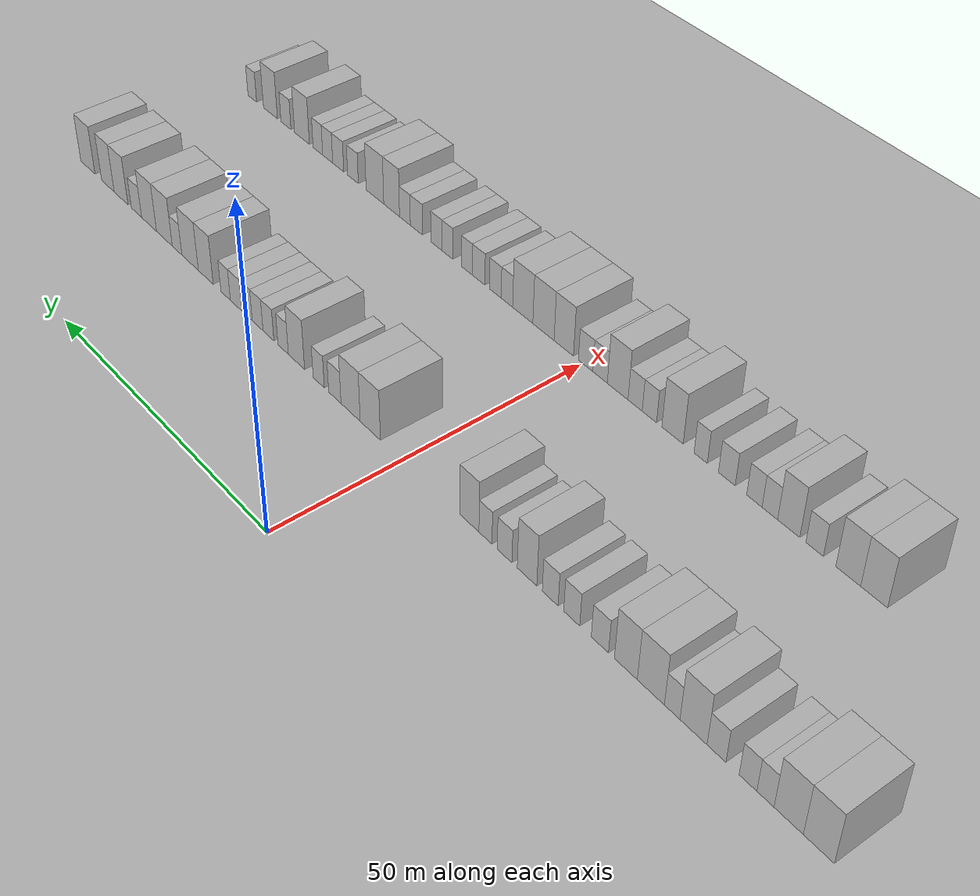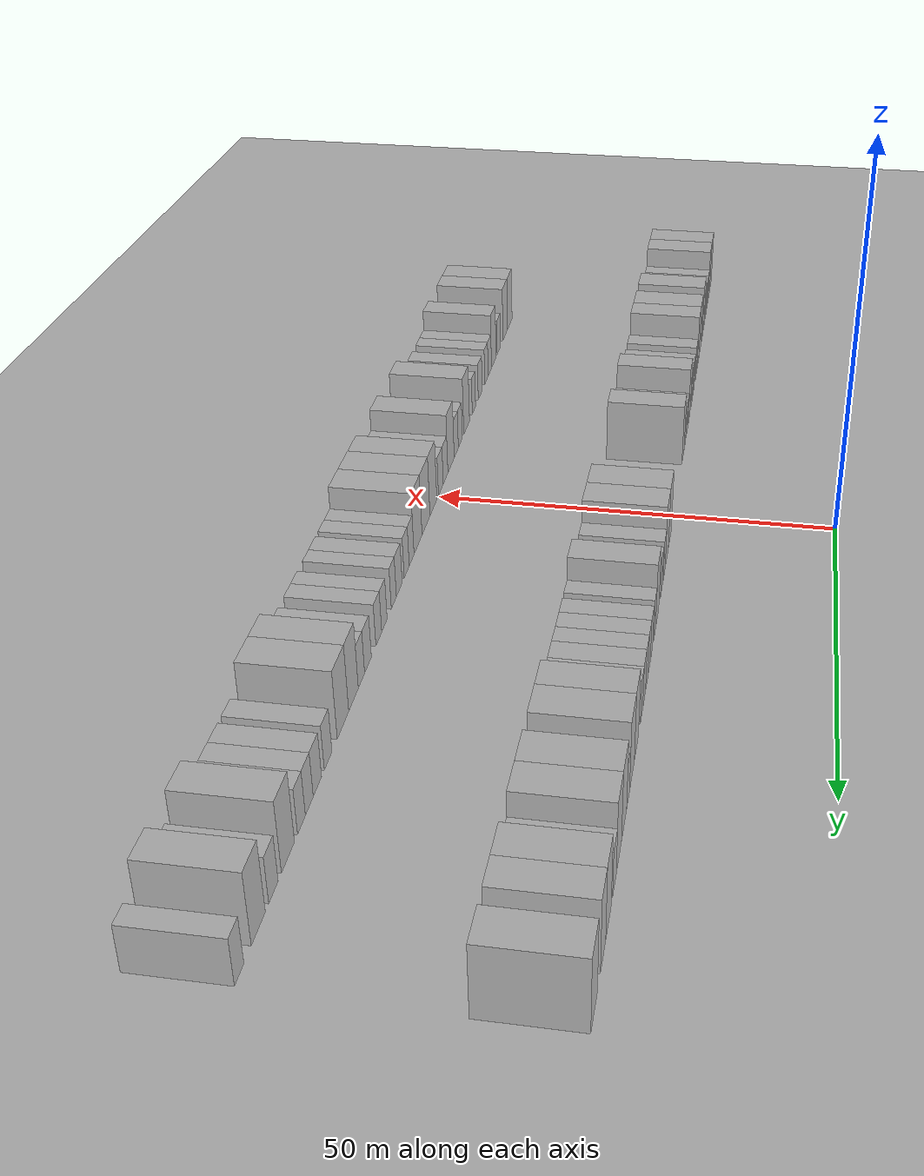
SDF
<sdf version="1.6">
 <world name="default">
  <include><name>ground_plane_1</name><uri>model://HANNAS_ground_plane</uri></include>
  <include>
   <name>ground_plane_2</name>
   <uri>model://HANNAS_ground_plane</uri>
   <pose>100 0 0  0 0 0</pose>
  </include>
  <model name="building_36">
   <static>1</static>
   <pose>25.0000 -72.1518 0 0.000000 0.000000 0.000000</pose>
   <link name="link">
    <pose>0 0 4.50 0 0 0</pose>
    <collision name="collision"><geometry><box><size>10.0000 4.3803 9.0000</size></box></geometry></collision>
    <visual name="visual">
     <cast_shadows>0</cast_shadows>
     <geometry><box><size>10.0000 4.3803 9.0000</size></box></geometry>
     <material>
      <script>
       <uri>model://HANNAS_wall/materials/scripts</uri>
       <uri>model://HANNAS_wall/materials/textures</uri>
       <name>vrc/HANNAS_wall</name>
      </script>
     </material>
    </visual>
   </link>
  </model>
  <model name="building_37">
   <static>1</static>
   <pose>25.0000 -67.8491 0 0.000000 0.000000 0.000000</pose>
   <link name="link">
    <pose>0 0 4.50 0 0 0</pose>
    <collision name="collision"><geometry><box><size>10.0000 4.2253 9.0000</size></box></geometry></collision>
    <visual name="visual">
     <cast_shadows>0</cast_shadows>
     <geometry><box><size>10.0000 4.2253 9.0000</size></box></geometry>
     <material>
      <script>
       <uri>model://HANNAS_wall/materials/scripts</uri>
       <uri>model://HANNAS_wall/materials/textures</uri>
       <name>vrc/HANNAS_wall</name>
      </script>
     </material>
    </visual>
   </link>
  </model>
  <model name="building_38">
   <static>1</static>
   <pose>25.0000 -64.4695 0 0.000000 0.000000 0.000000</pose>
   <link name="link">
    <pose>0 0 3.00 0 0 0</pose>
    <collision name="collision"><geometry><box><size>10.0000 2.5338 6.0000</size></box></geometry></collision>
    <visual name="visual">
     <cast_shadows>0</cast_shadows>
     <geometry><box><size>10.0000 2.5338 6.0000</size></box></geometry>
     <material>
      <script>
       <uri>model://HANNAS_wall/materials/scripts</uri>
       <uri>model://HANNAS_wall/materials/textures</uri>
       <name>vrc/HANNAS_wall</name>
      </script>
     </material>
    </visual>
   </link>
  </model>
  <model name="building_39">
   <static>1</static>
   <pose>25.0000 -61.8764 0 0.000000 0.000000 0.000000</pose>
   <link name="link">
    <pose>0 0 3.00 0 0 0</pose>
    <collision name="collision"><geometry><box><size>10.0000 2.6525 6.0000</size></box></geometry></collision>
    <visual name="visual">
     <cast_shadows>0</cast_shadows>
     <geometry><box><size>10.0000 2.6525 6.0000</size></box></geometry>
     <material>
      <script>
       <uri>model://HANNAS_wall/materials/scripts</uri>
       <uri>model://HANNAS_wall/materials/textures</uri>
       <name>vrc/HANNAS_wall</name>
      </script>
     </material>
    </visual>
   </link>
  </model>
  <model name="building_40">
   <static>1</static>
   <pose>25.0000 -57.0956 0 0.000000 0.000000 0.000000</pose>
   <link name="link">
    <pose>0 0 3.00 0 0 0</pose>
    <collision name="collision"><geometry><box><size>10.0000 2.9092 6.0000</size></box></geometry></collision>
    <visual name="visual">
     <cast_shadows>0</cast_shadows>
     <geometry><box><size>10.0000 2.9092 6.0000</size></box></geometry>
     <material>
      <script>
       <uri>model://HANNAS_wall/materials/scripts</uri>
       <uri>model://HANNAS_wall/materials/textures</uri>
       <name>vrc/HANNAS_wall</name>
      </script>
     </material>
    </visual>
   </link>
  </model>
  <model name="building_41">
   <static>1</static>
   <pose>25.0000 -53.5084 0 0.000000 0.000000 0.000000</pose>
   <link name="link">
    <pose>0 0 4.50 0 0 0</pose>
    <collision name="collision"><geometry><box><size>10.0000 4.2651 9.0000</size></box></geometry></collision>
    <visual name="visual">
     <cast_shadows>0</cast_shadows>
     <geometry><box><size>10.0000 4.2651 9.0000</size></box></geometry>
     <material>
      <script>
       <uri>model://HANNAS_wall/materials/scripts</uri>
       <uri>model://HANNAS_wall/materials/textures</uri>
       <name>vrc/HANNAS_wall</name>
      </script>
     </material>
    </visual>
   </link>
  </model>
  <model name="building_42">
   <static>1</static>
   <pose>25.0000 -50.1264 0 0.000000 0.000000 0.000000</pose>
   <link name="link">
    <pose>0 0 3.00 0 0 0</pose>
    <collision name="collision"><geometry><box><size>10.0000 2.4989 6.0000</size></box></geometry></collision>
    <visual name="visual">
     <cast_shadows>0</cast_shadows>
     <geometry><box><size>10.0000 2.4989 6.0000</size></box></geometry>
     <material>
      <script>
       <uri>model://HANNAS_wall/materials/scripts</uri>
       <uri>model://HANNAS_wall/materials/textures</uri>
       <name>vrc/HANNAS_wall</name>
      </script>
     </material>
    </visual>
   </link>
  </model>
  <model name="building_43">
   <static>1</static>
   <pose>25.0000 -46.6561 0 0.000000 0.000000 0.000000</pose>
   <link name="link">
    <pose>0 0 4.50 0 0 0</pose>
    <collision name="collision"><geometry><box><size>10.0000 4.4417 9.0000</size></box></geometry></collision>
    <visual name="visual">
     <cast_shadows>0</cast_shadows>
     <geometry><box><size>10.0000 4.4417 9.0000</size></box></geometry>
     <material>
      <script>
       <uri>model://HANNAS_wall/materials/scripts</uri>
       <uri>model://HANNAS_wall/materials/textures</uri>
       <name>vrc/HANNAS_wall</name>
      </script>
     </material>
    </visual>
   </link>
  </model>
  <model name="building_44">
   <static>1</static>
   <pose>25.0000 -42.5139 0 0.000000 0.000000 0.000000</pose>
   <link name="link">
    <pose>0 0 4.50 0 0 0</pose>
    <collision name="collision"><geometry><box><size>10.0000 3.8426 9.0000</size></box></geometry></collision>
    <visual name="visual">
     <cast_shadows>0</cast_shadows>
     <geometry><box><size>10.0000 3.8426 9.0000</size></box></geometry>
     <material>
      <script>
       <uri>model://HANNAS_wall/materials/scripts</uri>
       <uri>model://HANNAS_wall/materials/textures</uri>
       <name>vrc/HANNAS_wall</name>
      </script>
     </material>
    </visual>
   </link>
  </model>
  <model name="building_45">
   <static>1</static>
   <pose>25.0000 -38.1033 0 0.000000 0.000000 0.000000</pose>
   <link name="link">
    <pose>0 0 3.00 0 0 0</pose>
    <collision name="collision"><geometry><box><size>10.0000 2.9786 6.0000</size></box></geometry></collision>
    <visual name="visual">
     <cast_shadows>0</cast_shadows>
     <geometry><box><size>10.0000 2.9786 6.0000</size></box></geometry>
     <material>
      <script>
       <uri>model://HANNAS_wall/materials/scripts</uri>
       <uri>model://HANNAS_wall/materials/textures</uri>
       <name>vrc/HANNAS_wall</name>
      </script>
     </material>
    </visual>
   </link>
  </model>
  <model name="building_46">
   <static>1</static>
   <pose>25.0000 -33.1931 0 0.000000 0.000000 0.000000</pose>
   <link name="link">
    <pose>0 0 3.00 0 0 0</pose>
    <collision name="collision"><geometry><box><size>10.0000 2.8418 6.0000</size></box></geometry></collision>
    <visual name="visual">
     <cast_shadows>0</cast_shadows>
     <geometry><box><size>10.0000 2.8418 6.0000</size></box></geometry>
     <material>
      <script>
       <uri>model://HANNAS_wall/materials/scripts</uri>
       <uri>model://HANNAS_wall/materials/textures</uri>
       <name>vrc/HANNAS_wall</name>
      </script>
     </material>
    </visual>
   </link>
  </model>
  <model name="building_47">
   <static>1</static>
   <pose>25.0000 -29.3396 0 0.000000 0.000000 0.000000</pose>
   <link name="link">
    <pose>0 0 3.00 0 0 0</pose>
    <collision name="collision"><geometry><box><size>10.0000 2.8653 6.0000</size></box></geometry></collision>
    <visual name="visual">
     <cast_shadows>0</cast_shadows>
     <geometry><box><size>10.0000 2.8653 6.0000</size></box></geometry>
     <material>
      <script>
       <uri>model://HANNAS_wall/materials/scripts</uri>
       <uri>model://HANNAS_wall/materials/textures</uri>
       <name>vrc/HANNAS_wall</name>
      </script>
     </material>
    </visual>
   </link>
  </model>
  <model name="building_48">
   <static>1</static>
   <pose>25.0000 -25.0967 0 0.000000 0.000000 0.000000</pose>
   <link name="link">
    <pose>0 0 4.50 0 0 0</pose>
    <collision name="collision"><geometry><box><size>10.0000 3.6206 9.0000</size></box></geometry></collision>
    <visual name="visual">
     <cast_shadows>0</cast_shadows>
     <geometry><box><size>10.0000 3.6206 9.0000</size></box></geometry>
     <material>
      <script>
       <uri>model://HANNAS_wall/materials/scripts</uri>
       <uri>model://HANNAS_wall/materials/textures</uri>
       <name>vrc/HANNAS_wall</name>
      </script>
     </material>
    </visual>
   </link>
  </model>
  <model name="building_49">
   <static>1</static>
   <pose>25.0000 -20.8921 0 0.000000 0.000000 0.000000</pose>
   <link name="link">
    <pose>0 0 3.00 0 0 0</pose>
    <collision name="collision"><geometry><box><size>10.0000 2.7886 6.0000</size></box></geometry></collision>
    <visual name="visual">
     <cast_shadows>0</cast_shadows>
     <geometry><box><size>10.0000 2.7886 6.0000</size></box></geometry>
     <material>
      <script>
       <uri>model://HANNAS_wall/materials/scripts</uri>
       <uri>model://HANNAS_wall/materials/textures</uri>
       <name>vrc/HANNAS_wall</name>
      </script>
     </material>
    </visual>
   </link>
  </model>
  <model name="building_50">
   <static>1</static>
   <pose>25.0000 -17.2437 0 0.000000 0.000000 0.000000</pose>
   <link name="link">
    <pose>0 0 3.00 0 0 0</pose>
    <collision name="collision"><geometry><box><size>10.0000 2.5082 6.0000</size></box></geometry></collision>
    <visual name="visual">
     <cast_shadows>0</cast_shadows>
     <geometry><box><size>10.0000 2.5082 6.0000</size></box></geometry>
     <material>
      <script>
       <uri>model://HANNAS_wall/materials/scripts</uri>
       <uri>model://HANNAS_wall/materials/textures</uri>
       <name>vrc/HANNAS_wall</name>
      </script>
     </material>
    </visual>
   </link>
  </model>
  <model name="building_51">
   <static>1</static>
   <pose>25.0000 -14.1035 0 0.000000 0.000000 0.000000</pose>
   <link name="link">
    <pose>0 0 4.50 0 0 0</pose>
    <collision name="collision"><geometry><box><size>10.0000 3.7724 9.0000</size></box></geometry></collision>
    <visual name="visual">
     <cast_shadows>0</cast_shadows>
     <geometry><box><size>10.0000 3.7724 9.0000</size></box></geometry>
     <material>
      <script>
       <uri>model://HANNAS_wall/materials/scripts</uri>
       <uri>model://HANNAS_wall/materials/textures</uri>
       <name>vrc/HANNAS_wall</name>
      </script>
     </material>
    </visual>
   </link>
  </model>
  <model name="building_52">
   <static>1</static>
   <pose>25.0000 6.3976 0 0.000000 0.000000 0.000000</pose>
   <link name="link">
    <pose>0 0 4.50 0 0 0</pose>
    <collision name="collision"><geometry><box><size>10.0000 4.4099 9.0000</size></box></geometry></collision>
    <visual name="visual">
     <cast_shadows>0</cast_shadows>
     <geometry><box><size>10.0000 4.4099 9.0000</size></box></geometry>
     <material>
      <script>
       <uri>model://HANNAS_wall/materials/scripts</uri>
       <uri>model://HANNAS_wall/materials/textures</uri>
       <name>vrc/HANNAS_wall</name>
      </script>
     </material>
    </visual>
   </link>
  </model>
  <model name="building_53">
   <static>1</static>
   <pose>25.0000 10.7470 0 0.000000 0.000000 0.000000</pose>
   <link name="link">
    <pose>0 0 4.50 0 0 0</pose>
    <collision name="collision"><geometry><box><size>10.0000 4.2888 9.0000</size></box></geometry></collision>
    <visual name="visual">
     <cast_shadows>0</cast_shadows>
     <geometry><box><size>10.0000 4.2888 9.0000</size></box></geometry>
     <material>
      <script>
       <uri>model://HANNAS_wall/materials/scripts</uri>
       <uri>model://HANNAS_wall/materials/textures</uri>
       <name>vrc/HANNAS_wall</name>
      </script>
     </material>
    </visual>
   </link>
  </model>
  <model name="building_54">
   <static>1</static>
   <pose>25.0000 14.2890 0 0.000000 0.000000 0.000000</pose>
   <link name="link">
    <pose>0 0 3.00 0 0 0</pose>
    <collision name="collision"><geometry><box><size>10.0000 2.7950 6.0000</size></box></geometry></collision>
    <visual name="visual">
     <cast_shadows>0</cast_shadows>
     <geometry><box><size>10.0000 2.7950 6.0000</size></box></geometry>
     <material>
      <script>
       <uri>model://HANNAS_wall/materials/scripts</uri>
       <uri>model://HANNAS_wall/materials/textures</uri>
       <name>vrc/HANNAS_wall</name>
      </script>
     </material>
    </visual>
   </link>
  </model>
  <model name="building_55">
   <static>1</static>
   <pose>25.0000 17.9822 0 0.000000 0.000000 0.000000</pose>
   <link name="link">
    <pose>0 0 3.00 0 0 0</pose>
    <collision name="collision"><geometry><box><size>10.0000 2.5914 6.0000</size></box></geometry></collision>
    <visual name="visual">
     <cast_shadows>0</cast_shadows>
     <geometry><box><size>10.0000 2.5914 6.0000</size></box></geometry>
     <material>
      <script>
       <uri>model://HANNAS_wall/materials/scripts</uri>
       <uri>model://HANNAS_wall/materials/textures</uri>
       <name>vrc/HANNAS_wall</name>
      </script>
     </material>
    </visual>
   </link>
  </model>
  <model name="building_56">
   <static>1</static>
   <pose>25.0000 23.2007 0 0.000000 0.000000 0.000000</pose>
   <link name="link">
    <pose>0 0 4.50 0 0 0</pose>
    <collision name="collision"><geometry><box><size>10.0000 3.8457 9.0000</size></box></geometry></collision>
    <visual name="visual">
     <cast_shadows>0</cast_shadows>
     <geometry><box><size>10.0000 3.8457 9.0000</size></box></geometry>
     <material>
      <script>
       <uri>model://HANNAS_wall/materials/scripts</uri>
       <uri>model://HANNAS_wall/materials/textures</uri>
       <name>vrc/HANNAS_wall</name>
      </script>
     </material>
    </visual>
   </link>
  </model>
  <model name="building_57">
   <static>1</static>
   <pose>25.0000 26.3713 0 0.000000 0.000000 0.000000</pose>
   <link name="link">
    <pose>0 0 3.00 0 0 0</pose>
    <collision name="collision"><geometry><box><size>10.0000 2.4954 6.0000</size></box></geometry></collision>
    <visual name="visual">
     <cast_shadows>0</cast_shadows>
     <geometry><box><size>10.0000 2.4954 6.0000</size></box></geometry>
     <material>
      <script>
       <uri>model://HANNAS_wall/materials/scripts</uri>
       <uri>model://HANNAS_wall/materials/textures</uri>
       <name>vrc/HANNAS_wall</name>
      </script>
     </material>
    </visual>
   </link>
  </model>
  <model name="building_58">
   <static>1</static>
   <pose>25.0000 29.9428 0 0.000000 0.000000 0.000000</pose>
   <link name="link">
    <pose>0 0 3.00 0 0 0</pose>
    <collision name="collision"><geometry><box><size>10.0000 2.6477 6.0000</size></box></geometry></collision>
    <visual name="visual">
     <cast_shadows>0</cast_shadows>
     <geometry><box><size>10.0000 2.6477 6.0000</size></box></geometry>
     <material>
      <script>
       <uri>model://HANNAS_wall/materials/scripts</uri>
       <uri>model://HANNAS_wall/materials/textures</uri>
       <name>vrc/HANNAS_wall</name>
      </script>
     </material>
    </visual>
   </link>
  </model>
  <model name="building_59">
   <static>1</static>
   <pose>25.0000 32.6140 0 0.000000 0.000000 0.000000</pose>
   <link name="link">
    <pose>0 0 3.00 0 0 0</pose>
    <collision name="collision"><geometry><box><size>10.0000 2.6945 6.0000</size></box></geometry></collision>
    <visual name="visual">
     <cast_shadows>0</cast_shadows>
     <geometry><box><size>10.0000 2.6945 6.0000</size></box></geometry>
     <material>
      <script>
       <uri>model://HANNAS_wall/materials/scripts</uri>
       <uri>model://HANNAS_wall/materials/textures</uri>
       <name>vrc/HANNAS_wall</name>
      </script>
     </material>
    </visual>
   </link>
  </model>
  <model name="building_60">
   <static>1</static>
   <pose>25.0000 35.2494 0 0.000000 0.000000 0.000000</pose>
   <link name="link">
    <pose>0 0 3.00 0 0 0</pose>
    <collision name="collision"><geometry><box><size>10.0000 2.5763 6.0000</size></box></geometry></collision>
    <visual name="visual">
     <cast_shadows>0</cast_shadows>
     <geometry><box><size>10.0000 2.5763 6.0000</size></box></geometry>
     <material>
      <script>
       <uri>model://HANNAS_wall/materials/scripts</uri>
       <uri>model://HANNAS_wall/materials/textures</uri>
       <name>vrc/HANNAS_wall</name>
      </script>
     </material>
    </visual>
   </link>
  </model>
  <model name="building_61">
   <static>1</static>
   <pose>25.0000 38.0067 0 0.000000 0.000000 0.000000</pose>
   <link name="link">
    <pose>0 0 3.00 0 0 0</pose>
    <collision name="collision"><geometry><box><size>10.0000 2.9383 6.0000</size></box></geometry></collision>
    <visual name="visual">
     <cast_shadows>0</cast_shadows>
     <geometry><box><size>10.0000 2.9383 6.0000</size></box></geometry>
     <material>
      <script>
       <uri>model://HANNAS_wall/materials/scripts</uri>
       <uri>model://HANNAS_wall/materials/textures</uri>
       <name>vrc/HANNAS_wall</name>
      </script>
     </material>
    </visual>
   </link>
  </model>
  <model name="building_62">
   <static>1</static>
   <pose>25.0000 40.7028 0 0.000000 0.000000 0.000000</pose>
   <link name="link">
    <pose>0 0 3.00 0 0 0</pose>
    <collision name="collision"><geometry><box><size>10.0000 2.4539 6.0000</size></box></geometry></collision>
    <visual name="visual">
     <cast_shadows>0</cast_shadows>
     <geometry><box><size>10.0000 2.4539 6.0000</size></box></geometry>
     <material>
      <script>
       <uri>model://HANNAS_wall/materials/scripts</uri>
       <uri>model://HANNAS_wall/materials/textures</uri>
       <name>vrc/HANNAS_wall</name>
      </script>
     </material>
    </visual>
   </link>
  </model>
  <model name="building_63">
   <static>1</static>
   <pose>25.0000 45.8906 0 0.000000 0.000000 0.000000</pose>
   <link name="link">
    <pose>0 0 4.50 0 0 0</pose>
    <collision name="collision"><geometry><box><size>10.0000 3.9216 9.0000</size></box></geometry></collision>
    <visual name="visual">
     <cast_shadows>0</cast_shadows>
     <geometry><box><size>10.0000 3.9216 9.0000</size></box></geometry>
     <material>
      <script>
       <uri>model://HANNAS_wall/materials/scripts</uri>
       <uri>model://HANNAS_wall/materials/textures</uri>
       <name>vrc/HANNAS_wall</name>
      </script>
     </material>
    </visual>
   </link>
  </model>
  <model name="building_64">
   <static>1</static>
   <pose>25.0000 50.0739 0 0.000000 0.000000 0.000000</pose>
   <link name="link">
    <pose>0 0 4.50 0 0 0</pose>
    <collision name="collision"><geometry><box><size>10.0000 4.4449 9.0000</size></box></geometry></collision>
    <visual name="visual">
     <cast_shadows>0</cast_shadows>
     <geometry><box><size>10.0000 4.4449 9.0000</size></box></geometry>
     <material>
      <script>
       <uri>model://HANNAS_wall/materials/scripts</uri>
       <uri>model://HANNAS_wall/materials/textures</uri>
       <name>vrc/HANNAS_wall</name>
      </script>
     </material>
    </visual>
   </link>
  </model>
  <model name="building_65">
   <static>1</static>
   <pose>25.0000 53.5975 0 0.000000 0.000000 0.000000</pose>
   <link name="link">
    <pose>0 0 3.00 0 0 0</pose>
    <collision name="collision"><geometry><box><size>10.0000 2.6024 6.0000</size></box></geometry></collision>
    <visual name="visual">
     <cast_shadows>0</cast_shadows>
     <geometry><box><size>10.0000 2.6024 6.0000</size></box></geometry>
     <material>
      <script>
       <uri>model://HANNAS_wall/materials/scripts</uri>
       <uri>model://HANNAS_wall/materials/textures</uri>
       <name>vrc/HANNAS_wall</name>
      </script>
     </material>
    </visual>
   </link>
  </model>
  <model name="building_66">
   <static>1</static>
   <pose>25.0000 57.0975 0 0.000000 0.000000 0.000000</pose>
   <link name="link">
    <pose>0 0 4.50 0 0 0</pose>
    <collision name="collision"><geometry><box><size>10.0000 4.3976 9.0000</size></box></geometry></collision>
    <visual name="visual">
     <cast_shadows>0</cast_shadows>
     <geometry><box><size>10.0000 4.3976 9.0000</size></box></geometry>
     <material>
      <script>
       <uri>model://HANNAS_wall/materials/scripts</uri>
       <uri>model://HANNAS_wall/materials/textures</uri>
       <name>vrc/HANNAS_wall</name>
      </script>
     </material>
    </visual>
   </link>
  </model>
  <model name="building_67">
   <static>1</static>
   <pose>25.0000 61.4059 0 0.000000 0.000000 0.000000</pose>
   <link name="link">
    <pose>0 0 4.50 0 0 0</pose>
    <collision name="collision"><geometry><box><size>10.0000 4.2192 9.0000</size></box></geometry></collision>
    <visual name="visual">
     <cast_shadows>0</cast_shadows>
     <geometry><box><size>10.0000 4.2192 9.0000</size></box></geometry>
     <material>
      <script>
       <uri>model://HANNAS_wall/materials/scripts</uri>
       <uri>model://HANNAS_wall/materials/textures</uri>
       <name>vrc/HANNAS_wall</name>
      </script>
     </material>
    </visual>
   </link>
  </model>
  <model name="building_68">
   <static>1</static>
   <pose>25.0000 64.9801 0 0.000000 0.000000 0.000000</pose>
   <link name="link">
    <pose>0 0 3.00 0 0 0</pose>
    <collision name="collision"><geometry><box><size>10.0000 2.9291 6.0000</size></box></geometry></collision>
    <visual name="visual">
     <cast_shadows>0</cast_shadows>
     <geometry><box><size>10.0000 2.9291 6.0000</size></box></geometry>
     <material>
      <script>
       <uri>model://HANNAS_wall/materials/scripts</uri>
       <uri>model://HANNAS_wall/materials/textures</uri>
       <name>vrc/HANNAS_wall</name>
      </script>
     </material>
    </visual>
   </link>
  </model>
  <model name="building_69">
   <static>1</static>
   <pose>25.0000 69.4753 0 0.000000 0.000000 0.000000</pose>
   <link name="link">
    <pose>0 0 4.50 0 0 0</pose>
    <collision name="collision"><geometry><box><size>10.0000 4.0613 9.0000</size></box></geometry></collision>
    <visual name="visual">
     <cast_shadows>0</cast_shadows>
     <geometry><box><size>10.0000 4.0613 9.0000</size></box></geometry>
     <material>
      <script>
       <uri>model://HANNAS_wall/materials/scripts</uri>
       <uri>model://HANNAS_wall/materials/textures</uri>
       <name>vrc/HANNAS_wall</name>
      </script>
     </material>
    </visual>
   </link>
  </model>
  <model name="building_70">
   <static>1</static>
   <pose>25.0000 73.3760 0 0.000000 0.000000 0.000000</pose>
   <link name="link">
    <pose>0 0 4.50 0 0 0</pose>
    <collision name="collision"><geometry><box><size>10.0000 3.7401 9.0000</size></box></geometry></collision>
    <visual name="visual">
     <cast_shadows>0</cast_shadows>
     <geometry><box><size>10.0000 3.7401 9.0000</size></box></geometry>
     <material>
      <script>
       <uri>model://HANNAS_wall/materials/scripts</uri>
       <uri>model://HANNAS_wall/materials/textures</uri>
       <name>vrc/HANNAS_wall</name>
      </script>
     </material>
    </visual>
   </link>
  </model>
  <model name="building_71">
   <static>1</static>
   <pose>25.0000 79.4084 0 0.000000 0.000000 0.000000</pose>
   <link name="link">
    <pose>0 0 4.50 0 0 0</pose>
    <collision name="collision"><geometry><box><size>10.0000 4.3248 9.0000</size></box></geometry></collision>
    <visual name="visual">
     <cast_shadows>0</cast_shadows>
     <geometry><box><size>10.0000 4.3248 9.0000</size></box></geometry>
     <material>
      <script>
       <uri>model://HANNAS_wall/materials/scripts</uri>
       <uri>model://HANNAS_wall/materials/textures</uri>
       <name>vrc/HANNAS_wall</name>
      </script>
     </material>
    </visual>
   </link>
  </model>
  <model name="building_143">
   <static>1</static>
   <pose>55.0000 -52.2307 0 0.000000 0.000000 0.000000</pose>
   <link name="link">
    <pose>0 0 4.50 0 0 0</pose>
    <collision name="collision"><geometry><box><size>10.0000 4.1882 9.0000</size></box></geometry></collision>
    <visual name="visual">
     <cast_shadows>0</cast_shadows>
     <geometry><box><size>10.0000 4.1882 9.0000</size></box></geometry>
     <material>
      <script>
       <uri>model://HANNAS_wall/materials/scripts</uri>
       <uri>model://HANNAS_wall/materials/textures</uri>
       <name>vrc/HANNAS_wall</name>
      </script>
     </material>
    </visual>
   </link>
  </model>
  <model name="building_144">
   <static>1</static>
   <pose>55.0000 -48.1565 0 0.000000 0.000000 0.000000</pose>
   <link name="link">
    <pose>0 0 4.50 0 0 0</pose>
    <collision name="collision"><geometry><box><size>10.0000 3.9601 9.0000</size></box></geometry></collision>
    <visual name="visual">
     <cast_shadows>0</cast_shadows>
     <geometry><box><size>10.0000 3.9601 9.0000</size></box></geometry>
     <material>
      <script>
       <uri>model://HANNAS_wall/materials/scripts</uri>
       <uri>model://HANNAS_wall/materials/textures</uri>
       <name>vrc/HANNAS_wall</name>
      </script>
     </material>
    </visual>
   </link>
  </model>
  <model name="building_145">
   <static>1</static>
   <pose>55.0000 -42.7341 0 0.000000 0.000000 0.000000</pose>
   <link name="link">
    <pose>0 0 3.00 0 0 0</pose>
    <collision name="collision"><geometry><box><size>10.0000 2.8846 6.0000</size></box></geometry></collision>
    <visual name="visual">
     <cast_shadows>0</cast_shadows>
     <geometry><box><size>10.0000 2.8846 6.0000</size></box></geometry>
     <material>
      <script>
       <uri>model://HANNAS_wall/materials/scripts</uri>
       <uri>model://HANNAS_wall/materials/textures</uri>
       <name>vrc/HANNAS_wall</name>
      </script>
     </material>
    </visual>
   </link>
  </model>
  <model name="building_146">
   <static>1</static>
   <pose>55.0000 -38.4249 0 0.000000 0.000000 0.000000</pose>
   <link name="link">
    <pose>0 0 4.50 0 0 0</pose>
    <collision name="collision"><geometry><box><size>10.0000 3.7339 9.0000</size></box></geometry></collision>
    <visual name="visual">
     <cast_shadows>0</cast_shadows>
     <geometry><box><size>10.0000 3.7339 9.0000</size></box></geometry>
     <material>
      <script>
       <uri>model://HANNAS_wall/materials/scripts</uri>
       <uri>model://HANNAS_wall/materials/textures</uri>
       <name>vrc/HANNAS_wall</name>
      </script>
     </material>
    </visual>
   </link>
  </model>
  <model name="building_147">
   <static>1</static>
   <pose>55.0000 -35.2332 0 0.000000 0.000000 0.000000</pose>
   <link name="link">
    <pose>0 0 3.00 0 0 0</pose>
    <collision name="collision"><geometry><box><size>10.0000 2.6493 6.0000</size></box></geometry></collision>
    <visual name="visual">
     <cast_shadows>0</cast_shadows>
     <geometry><box><size>10.0000 2.6493 6.0000</size></box></geometry>
     <material>
      <script>
       <uri>model://HANNAS_wall/materials/scripts</uri>
       <uri>model://HANNAS_wall/materials/textures</uri>
       <name>vrc/HANNAS_wall</name>
      </script>
     </material>
    </visual>
   </link>
  </model>
  <model name="building_148">
   <static>1</static>
   <pose>55.0000 -32.5752 0 0.000000 0.000000 0.000000</pose>
   <link name="link">
    <pose>0 0 3.00 0 0 0</pose>
    <collision name="collision"><geometry><box><size>10.0000 2.6666 6.0000</size></box></geometry></collision>
    <visual name="visual">
     <cast_shadows>0</cast_shadows>
     <geometry><box><size>10.0000 2.6666 6.0000</size></box></geometry>
     <material>
      <script>
       <uri>model://HANNAS_wall/materials/scripts</uri>
       <uri>model://HANNAS_wall/materials/textures</uri>
       <name>vrc/HANNAS_wall</name>
      </script>
     </material>
    </visual>
   </link>
  </model>
  <model name="building_149">
   <static>1</static>
   <pose>55.0000 -27.7499 0 0.000000 0.000000 0.000000</pose>
   <link name="link">
    <pose>0 0 3.00 0 0 0</pose>
    <collision name="collision"><geometry><box><size>10.0000 2.9840 6.0000</size></box></geometry></collision>
    <visual name="visual">
     <cast_shadows>0</cast_shadows>
     <geometry><box><size>10.0000 2.9840 6.0000</size></box></geometry>
     <material>
      <script>
       <uri>model://HANNAS_wall/materials/scripts</uri>
       <uri>model://HANNAS_wall/materials/textures</uri>
       <name>vrc/HANNAS_wall</name>
      </script>
     </material>
    </visual>
   </link>
  </model>
  <model name="building_150">
   <static>1</static>
   <pose>55.0000 -23.0504 0 0.000000 0.000000 0.000000</pose>
   <link name="link">
    <pose>0 0 3.00 0 0 0</pose>
    <collision name="collision"><geometry><box><size>10.0000 2.4149 6.0000</size></box></geometry></collision>
    <visual name="visual">
     <cast_shadows>0</cast_shadows>
     <geometry><box><size>10.0000 2.4149 6.0000</size></box></geometry>
     <material>
      <script>
       <uri>model://HANNAS_wall/materials/scripts</uri>
       <uri>model://HANNAS_wall/materials/textures</uri>
       <name>vrc/HANNAS_wall</name>
      </script>
     </material>
    </visual>
   </link>
  </model>
  <model name="building_151">
   <static>1</static>
   <pose>55.0000 -17.8505 0 0.000000 0.000000 0.000000</pose>
   <link name="link">
    <pose>0 0 4.50 0 0 0</pose>
    <collision name="collision"><geometry><box><size>10.0000 3.9850 9.0000</size></box></geometry></collision>
    <visual name="visual">
     <cast_shadows>0</cast_shadows>
     <geometry><box><size>10.0000 3.9850 9.0000</size></box></geometry>
     <material>
      <script>
       <uri>model://HANNAS_wall/materials/scripts</uri>
       <uri>model://HANNAS_wall/materials/textures</uri>
       <name>vrc/HANNAS_wall</name>
      </script>
     </material>
    </visual>
   </link>
  </model>
  <model name="building_152">
   <static>1</static>
   <pose>55.0000 -13.4917 0 0.000000 0.000000 0.000000</pose>
   <link name="link">
    <pose>0 0 3.00 0 0 0</pose>
    <collision name="collision"><geometry><box><size>10.0000 2.7325 6.0000</size></box></geometry></collision>
    <visual name="visual">
     <cast_shadows>0</cast_shadows>
     <geometry><box><size>10.0000 2.7325 6.0000</size></box></geometry>
     <material>
      <script>
       <uri>model://HANNAS_wall/materials/scripts</uri>
       <uri>model://HANNAS_wall/materials/textures</uri>
       <name>vrc/HANNAS_wall</name>
      </script>
     </material>
    </visual>
   </link>
  </model>
  <model name="building_153">
   <static>1</static>
   <pose>55.0000 -10.7540 0 0.000000 0.000000 0.000000</pose>
   <link name="link">
    <pose>0 0 3.00 0 0 0</pose>
    <collision name="collision"><geometry><box><size>10.0000 2.7427 6.0000</size></box></geometry></collision>
    <visual name="visual">
     <cast_shadows>0</cast_shadows>
     <geometry><box><size>10.0000 2.7427 6.0000</size></box></geometry>
     <material>
      <script>
       <uri>model://HANNAS_wall/materials/scripts</uri>
       <uri>model://HANNAS_wall/materials/textures</uri>
       <name>vrc/HANNAS_wall</name>
      </script>
     </material>
    </visual>
   </link>
  </model>
  <model name="building_154">
   <static>1</static>
   <pose>55.0000 -7.3468 0 0.000000 0.000000 0.000000</pose>
   <link name="link">
    <pose>0 0 4.50 0 0 0</pose>
    <collision name="collision"><geometry><box><size>10.0000 4.0718 9.0000</size></box></geometry></collision>
    <visual name="visual">
     <cast_shadows>0</cast_shadows>
     <geometry><box><size>10.0000 4.0718 9.0000</size></box></geometry>
     <material>
      <script>
       <uri>model://HANNAS_wall/materials/scripts</uri>
       <uri>model://HANNAS_wall/materials/textures</uri>
       <name>vrc/HANNAS_wall</name>
      </script>
     </material>
    </visual>
   </link>
  </model>
  <model name="building_155">
   <static>1</static>
   <pose>55.0000 -3.8613 0 0.000000 0.000000 0.000000</pose>
   <link name="link">
    <pose>0 0 3.00 0 0 0</pose>
    <collision name="collision"><geometry><box><size>10.0000 2.8992 6.0000</size></box></geometry></collision>
    <visual name="visual">
     <cast_shadows>0</cast_shadows>
     <geometry><box><size>10.0000 2.8992 6.0000</size></box></geometry>
     <material>
      <script>
       <uri>model://HANNAS_wall/materials/scripts</uri>
       <uri>model://HANNAS_wall/materials/textures</uri>
       <name>vrc/HANNAS_wall</name>
      </script>
     </material>
    </visual>
   </link>
  </model>
  <model name="building_156">
   <static>1</static>
   <pose>55.0000 -0.9394 0 0.000000 0.000000 0.000000</pose>
   <link name="link">
    <pose>0 0 3.00 0 0 0</pose>
    <collision name="collision"><geometry><box><size>10.0000 2.9447 6.0000</size></box></geometry></collision>
    <visual name="visual">
     <cast_shadows>0</cast_shadows>
     <geometry><box><size>10.0000 2.9447 6.0000</size></box></geometry>
     <material>
      <script>
       <uri>model://HANNAS_wall/materials/scripts</uri>
       <uri>model://HANNAS_wall/materials/textures</uri>
       <name>vrc/HANNAS_wall</name>
      </script>
     </material>
    </visual>
   </link>
  </model>
  <model name="building_157">
   <static>1</static>
   <pose>55.0000 3.5468 0 0.000000 0.000000 0.000000</pose>
   <link name="link">
    <pose>0 0 4.50 0 0 0</pose>
    <collision name="collision"><geometry><box><size>10.0000 4.0277 9.0000</size></box></geometry></collision>
    <visual name="visual">
     <cast_shadows>0</cast_shadows>
     <geometry><box><size>10.0000 4.0277 9.0000</size></box></geometry>
     <material>
      <script>
       <uri>model://HANNAS_wall/materials/scripts</uri>
       <uri>model://HANNAS_wall/materials/textures</uri>
       <name>vrc/HANNAS_wall</name>
      </script>
     </material>
    </visual>
   </link>
  </model>
  <model name="building_158">
   <static>1</static>
   <pose>55.0000 7.8104 0 0.000000 0.000000 0.000000</pose>
   <link name="link">
    <pose>0 0 4.50 0 0 0</pose>
    <collision name="collision"><geometry><box><size>10.0000 4.4994 9.0000</size></box></geometry></collision>
    <visual name="visual">
     <cast_shadows>0</cast_shadows>
     <geometry><box><size>10.0000 4.4994 9.0000</size></box></geometry>
     <material>
      <script>
       <uri>model://HANNAS_wall/materials/scripts</uri>
       <uri>model://HANNAS_wall/materials/textures</uri>
       <name>vrc/HANNAS_wall</name>
      </script>
     </material>
    </visual>
   </link>
  </model>
  <model name="building_159">
   <static>1</static>
   <pose>55.0000 12.2430 0 0.000000 0.000000 0.000000</pose>
   <link name="link">
    <pose>0 0 4.50 0 0 0</pose>
    <collision name="collision"><geometry><box><size>10.0000 4.3659 9.0000</size></box></geometry></collision>
    <visual name="visual">
     <cast_shadows>0</cast_shadows>
     <geometry><box><size>10.0000 4.3659 9.0000</size></box></geometry>
     <material>
      <script>
       <uri>model://HANNAS_wall/materials/scripts</uri>
       <uri>model://HANNAS_wall/materials/textures</uri>
       <name>vrc/HANNAS_wall</name>
      </script>
     </material>
    </visual>
   </link>
  </model>
  <model name="building_160">
   <static>1</static>
   <pose>55.0000 15.6962 0 0.000000 0.000000 0.000000</pose>
   <link name="link">
    <pose>0 0 3.00 0 0 0</pose>
    <collision name="collision"><geometry><box><size>10.0000 2.5406 6.0000</size></box></geometry></collision>
    <visual name="visual">
     <cast_shadows>0</cast_shadows>
     <geometry><box><size>10.0000 2.5406 6.0000</size></box></geometry>
     <material>
      <script>
       <uri>model://HANNAS_wall/materials/scripts</uri>
       <uri>model://HANNAS_wall/materials/textures</uri>
       <name>vrc/HANNAS_wall</name>
      </script>
     </material>
    </visual>
   </link>
  </model>
  <model name="building_161">
   <static>1</static>
   <pose>55.0000 18.2702 0 0.000000 0.000000 0.000000</pose>
   <link name="link">
    <pose>0 0 3.00 0 0 0</pose>
    <collision name="collision"><geometry><box><size>10.0000 2.6073 6.0000</size></box></geometry></collision>
    <visual name="visual">
     <cast_shadows>0</cast_shadows>
     <geometry><box><size>10.0000 2.6073 6.0000</size></box></geometry>
     <material>
      <script>
       <uri>model://HANNAS_wall/materials/scripts</uri>
       <uri>model://HANNAS_wall/materials/textures</uri>
       <name>vrc/HANNAS_wall</name>
      </script>
     </material>
    </visual>
   </link>
  </model>
  <model name="building_162">
   <static>1</static>
   <pose>55.0000 22.0223 0 0.000000 0.000000 0.000000</pose>
   <link name="link">
    <pose>0 0 3.00 0 0 0</pose>
    <collision name="collision"><geometry><box><size>10.0000 2.8968 6.0000</size></box></geometry></collision>
    <visual name="visual">
     <cast_shadows>0</cast_shadows>
     <geometry><box><size>10.0000 2.8968 6.0000</size></box></geometry>
     <material>
      <script>
       <uri>model://HANNAS_wall/materials/scripts</uri>
       <uri>model://HANNAS_wall/materials/textures</uri>
       <name>vrc/HANNAS_wall</name>
      </script>
     </material>
    </visual>
   </link>
  </model>
  <model name="building_163">
   <static>1</static>
   <pose>55.0000 24.6954 0 0.000000 0.000000 0.000000</pose>
   <link name="link">
    <pose>0 0 3.00 0 0 0</pose>
    <collision name="collision"><geometry><box><size>10.0000 2.4495 6.0000</size></box></geometry></collision>
    <visual name="visual">
     <cast_shadows>0</cast_shadows>
     <geometry><box><size>10.0000 2.4495 6.0000</size></box></geometry>
     <material>
      <script>
       <uri>model://HANNAS_wall/materials/scripts</uri>
       <uri>model://HANNAS_wall/materials/textures</uri>
       <name>vrc/HANNAS_wall</name>
      </script>
     </material>
    </visual>
   </link>
  </model>
  <model name="building_164">
   <static>1</static>
   <pose>55.0000 29.1751 0 0.000000 0.000000 0.000000</pose>
   <link name="link">
    <pose>0 0 3.00 0 0 0</pose>
    <collision name="collision"><geometry><box><size>10.0000 2.5098 6.0000</size></box></geometry></collision>
    <visual name="visual">
     <cast_shadows>0</cast_shadows>
     <geometry><box><size>10.0000 2.5098 6.0000</size></box></geometry>
     <material>
      <script>
       <uri>model://HANNAS_wall/materials/scripts</uri>
       <uri>model://HANNAS_wall/materials/textures</uri>
       <name>vrc/HANNAS_wall</name>
      </script>
     </material>
    </visual>
   </link>
  </model>
  <model name="building_165">
   <static>1</static>
   <pose>55.0000 31.7508 0 0.000000 0.000000 0.000000</pose>
   <link name="link">
    <pose>0 0 3.00 0 0 0</pose>
    <collision name="collision"><geometry><box><size>10.0000 2.6416 6.0000</size></box></geometry></collision>
    <visual name="visual">
     <cast_shadows>0</cast_shadows>
     <geometry><box><size>10.0000 2.6416 6.0000</size></box></geometry>
     <material>
      <script>
       <uri>model://HANNAS_wall/materials/scripts</uri>
       <uri>model://HANNAS_wall/materials/textures</uri>
       <name>vrc/HANNAS_wall</name>
      </script>
     </material>
    </visual>
   </link>
  </model>
  <model name="building_166">
   <static>1</static>
   <pose>55.0000 36.5321 0 0.000000 0.000000 0.000000</pose>
   <link name="link">
    <pose>0 0 3.00 0 0 0</pose>
    <collision name="collision"><geometry><box><size>10.0000 2.9211 6.0000</size></box></geometry></collision>
    <visual name="visual">
     <cast_shadows>0</cast_shadows>
     <geometry><box><size>10.0000 2.9211 6.0000</size></box></geometry>
     <material>
      <script>
       <uri>model://HANNAS_wall/materials/scripts</uri>
       <uri>model://HANNAS_wall/materials/textures</uri>
       <name>vrc/HANNAS_wall</name>
      </script>
     </material>
    </visual>
   </link>
  </model>
  <model name="building_167">
   <static>1</static>
   <pose>55.0000 39.3184 0 0.000000 0.000000 0.000000</pose>
   <link name="link">
    <pose>0 0 3.00 0 0 0</pose>
    <collision name="collision"><geometry><box><size>10.0000 2.6515 6.0000</size></box></geometry></collision>
    <visual name="visual">
     <cast_shadows>0</cast_shadows>
     <geometry><box><size>10.0000 2.6515 6.0000</size></box></geometry>
     <material>
      <script>
       <uri>model://HANNAS_wall/materials/scripts</uri>
       <uri>model://HANNAS_wall/materials/textures</uri>
       <name>vrc/HANNAS_wall</name>
      </script>
     </material>
    </visual>
   </link>
  </model>
  <model name="building_168">
   <static>1</static>
   <pose>55.0000 42.5968 0 0.000000 0.000000 0.000000</pose>
   <link name="link">
    <pose>0 0 4.50 0 0 0</pose>
    <collision name="collision"><geometry><box><size>10.0000 3.9053 9.0000</size></box></geometry></collision>
    <visual name="visual">
     <cast_shadows>0</cast_shadows>
     <geometry><box><size>10.0000 3.9053 9.0000</size></box></geometry>
     <material>
      <script>
       <uri>model://HANNAS_wall/materials/scripts</uri>
       <uri>model://HANNAS_wall/materials/textures</uri>
       <name>vrc/HANNAS_wall</name>
      </script>
     </material>
    </visual>
   </link>
  </model>
  <model name="building_169">
   <static>1</static>
   <pose>55.0000 46.7780 0 0.000000 0.000000 0.000000</pose>
   <link name="link">
    <pose>0 0 4.50 0 0 0</pose>
    <collision name="collision"><geometry><box><size>10.0000 4.4572 9.0000</size></box></geometry></collision>
    <visual name="visual">
     <cast_shadows>0</cast_shadows>
     <geometry><box><size>10.0000 4.4572 9.0000</size></box></geometry>
     <material>
      <script>
       <uri>model://HANNAS_wall/materials/scripts</uri>
       <uri>model://HANNAS_wall/materials/textures</uri>
       <name>vrc/HANNAS_wall</name>
      </script>
     </material>
    </visual>
   </link>
  </model>
  <model name="building_170">
   <static>1</static>
   <pose>55.0000 52.3924 0 0.000000 0.000000 0.000000</pose>
   <link name="link">
    <pose>0 0 3.00 0 0 0</pose>
    <collision name="collision"><geometry><box><size>10.0000 2.7716 6.0000</size></box></geometry></collision>
    <visual name="visual">
     <cast_shadows>0</cast_shadows>
     <geometry><box><size>10.0000 2.7716 6.0000</size></box></geometry>
     <material>
      <script>
       <uri>model://HANNAS_wall/materials/scripts</uri>
       <uri>model://HANNAS_wall/materials/textures</uri>
       <name>vrc/HANNAS_wall</name>
      </script>
     </material>
    </visual>
   </link>
  </model>
  <model name="building_171">
   <static>1</static>
   <pose>55.0000 56.2330 0 0.000000 0.000000 0.000000</pose>
   <link name="link">
    <pose>0 0 3.00 0 0 0</pose>
    <collision name="collision"><geometry><box><size>10.0000 2.9094 6.0000</size></box></geometry></collision>
    <visual name="visual">
     <cast_shadows>0</cast_shadows>
     <geometry><box><size>10.0000 2.9094 6.0000</size></box></geometry>
     <material>
      <script>
       <uri>model://HANNAS_wall/materials/scripts</uri>
       <uri>model://HANNAS_wall/materials/textures</uri>
       <name>vrc/HANNAS_wall</name>
      </script>
     </material>
    </visual>
   </link>
  </model>
  <model name="building_172">
   <static>1</static>
   <pose>55.0000 59.0252 0 0.000000 0.000000 0.000000</pose>
   <link name="link">
    <pose>0 0 3.00 0 0 0</pose>
    <collision name="collision"><geometry><box><size>10.0000 2.6751 6.0000</size></box></geometry></collision>
    <visual name="visual">
     <cast_shadows>0</cast_shadows>
     <geometry><box><size>10.0000 2.6751 6.0000</size></box></geometry>
     <material>
      <script>
       <uri>model://HANNAS_wall/materials/scripts</uri>
       <uri>model://HANNAS_wall/materials/textures</uri>
       <name>vrc/HANNAS_wall</name>
      </script>
     </material>
    </visual>
   </link>
  </model>
  <model name="building_173">
   <static>1</static>
   <pose>55.0000 61.6508 0 0.000000 0.000000 0.000000</pose>
   <link name="link">
    <pose>0 0 3.00 0 0 0</pose>
    <collision name="collision"><geometry><box><size>10.0000 2.5760 6.0000</size></box></geometry></collision>
    <visual name="visual">
     <cast_shadows>0</cast_shadows>
     <geometry><box><size>10.0000 2.5760 6.0000</size></box></geometry>
     <material>
      <script>
       <uri>model://HANNAS_wall/materials/scripts</uri>
       <uri>model://HANNAS_wall/materials/textures</uri>
       <name>vrc/HANNAS_wall</name>
      </script>
     </material>
    </visual>
   </link>
  </model>
  <model name="building_174">
   <static>1</static>
   <pose>55.0000 65.9756 0 0.000000 0.000000 0.000000</pose>
   <link name="link">
    <pose>0 0 4.50 0 0 0</pose>
    <collision name="collision"><geometry><box><size>10.0000 4.0736 9.0000</size></box></geometry></collision>
    <visual name="visual">
     <cast_shadows>0</cast_shadows>
     <geometry><box><size>10.0000 4.0736 9.0000</size></box></geometry>
     <material>
      <script>
       <uri>model://HANNAS_wall/materials/scripts</uri>
       <uri>model://HANNAS_wall/materials/textures</uri>
       <name>vrc/HANNAS_wall</name>
      </script>
     </material>
    </visual>
   </link>
  </model>
  <model name="building_175">
   <static>1</static>
   <pose>55.0000 70.4093 0 0.000000 0.000000 0.000000</pose>
   <link name="link">
    <pose>0 0 3.00 0 0 0</pose>
    <collision name="collision"><geometry><box><size>10.0000 2.7937 6.0000</size></box></geometry></collision>
    <visual name="visual">
     <cast_shadows>0</cast_shadows>
     <geometry><box><size>10.0000 2.7937 6.0000</size></box></geometry>
     <material>
      <script>
       <uri>model://HANNAS_wall/materials/scripts</uri>
       <uri>model://HANNAS_wall/materials/textures</uri>
       <name>vrc/HANNAS_wall</name>
      </script>
     </material>
    </visual>
   </link>
  </model>
  <model name="building_176">
   <static>1</static>
   <pose>55.0000 74.7833 0 0.000000 0.000000 0.000000</pose>
   <link name="link">
    <pose>0 0 4.50 0 0 0</pose>
    <collision name="collision"><geometry><box><size>10.0000 3.9544 9.0000</size></box></geometry></collision>
    <visual name="visual">
     <cast_shadows>0</cast_shadows>
     <geometry><box><size>10.0000 3.9544 9.0000</size></box></geometry>
     <material>
      <script>
       <uri>model://HANNAS_wall/materials/scripts</uri>
       <uri>model://HANNAS_wall/materials/textures</uri>
       <name>vrc/HANNAS_wall</name>
      </script>
     </material>
    </visual>
   </link>
  </model>
  <model name="building_177">
   <static>1</static>
   <pose>55.0000 80.0054 0 0.000000 0.000000 0.000000</pose>
   <link name="link">
    <pose>0 0 3.00 0 0 0</pose>
    <collision name="collision"><geometry><box><size>10.0000 2.4899 6.0000</size></box></geometry></collision>
    <visual name="visual">
     <cast_shadows>0</cast_shadows>
     <geometry><box><size>10.0000 2.4899 6.0000</size></box></geometry>
     <material>
      <script>
       <uri>model://HANNAS_wall/materials/scripts</uri>
       <uri>model://HANNAS_wall/materials/textures</uri>
       <name>vrc/HANNAS_wall</name>
      </script>
     </material>
    </visual>
   </link>
  </model>
 </world>
</sdf>
